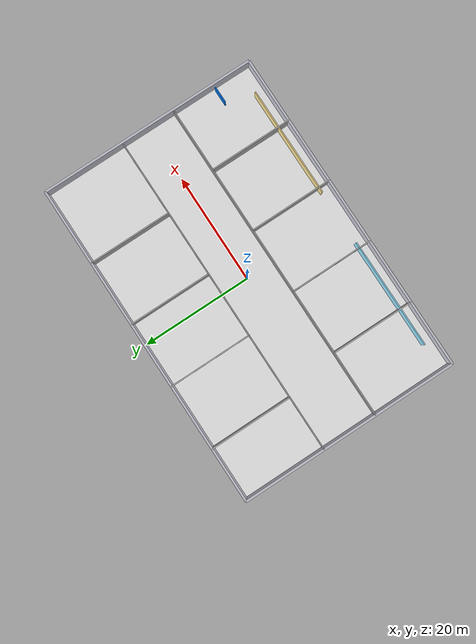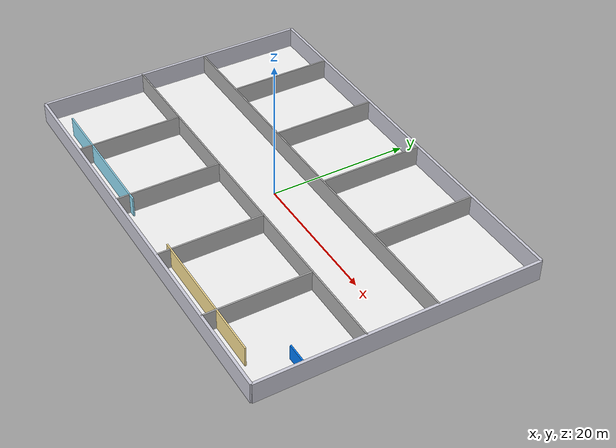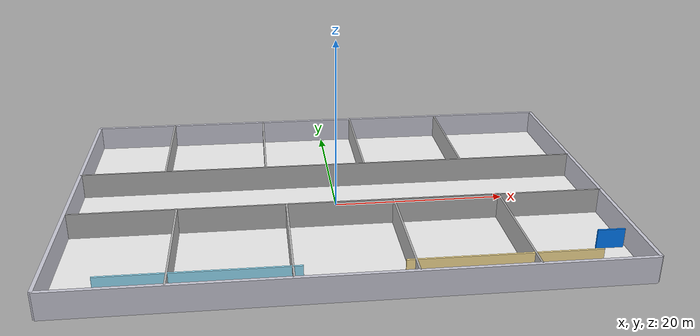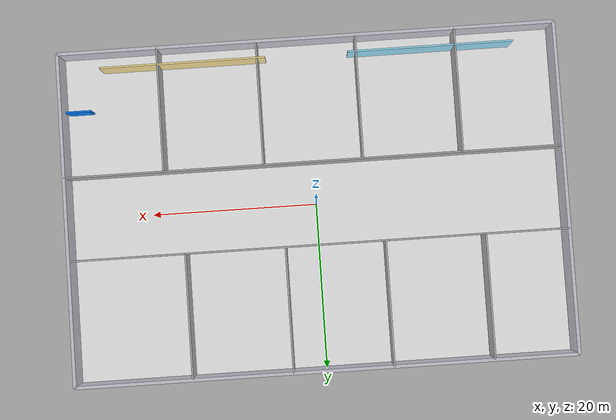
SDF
<sdf version="1.7">
 <world name="smart_hospital">
  <light name="sun_light" type="directional">
   <pose>0 0 20 0 0 0</pose>
   <diffuse>1 1 1 1</diffuse>
   <specular>0.2 0.2 0.2 1</specular>
   <direction>-0.5 0.1 -0.9</direction>
  </light>
  <model name="floor">
   <static>true</static>
   <link name="link">
    <collision name="collision"><geometry><box><size>60 40 0.1</size></box></geometry></collision>
    <visual name="visual">
     <geometry><box><size>60 40 0.1</size></box></geometry>
     <material><ambient>0.95 0.95 0.95 1</ambient><diffuse>0.95 0.95 0.95 1</diffuse></material>
    </visual>
   </link>
  </model>
  <model name="top_wall">
   <static>true</static>
   <pose>0 20 1.5 0 0 0</pose>
   <link name="link">
    <collision name="collision"><geometry><box><size>60 0.4 3</size></box></geometry></collision>
    <visual name="visual">
     <geometry><box><size>60 0.4 3</size></box></geometry>
     <material><ambient>0.8 0.8 0.85 1</ambient></material>
    </visual>
   </link>
  </model>
  <model name="bottom_wall">
   <static>true</static>
   <pose>0 -20 1.5 0 0 0</pose>
   <link name="link">
    <collision name="collision"><geometry><box><size>60 0.4 3</size></box></geometry></collision>
    <visual name="visual">
     <geometry><box><size>60 0.4 3</size></box></geometry>
     <material><ambient>0.8 0.8 0.85 1</ambient></material>
    </visual>
   </link>
  </model>
  <model name="left_wall">
   <static>true</static>
   <pose>-30 0 1.5 0 0 1.57</pose>
   <link name="link">
    <collision name="collision"><geometry><box><size>40 0.4 3</size></box></geometry></collision>
    <visual name="visual">
     <geometry><box><size>40 0.4 3</size></box></geometry>
     <material><ambient>0.8 0.8 0.85 1</ambient></material>
    </visual>
   </link>
  </model>
  <model name="right_wall">
   <static>true</static>
   <pose>30 0 1.5 0 0 1.57</pose>
   <link name="link">
    <collision name="collision"><geometry><box><size>40 0.4 3</size></box></geometry></collision>
    <visual name="visual">
     <geometry><box><size>40 0.4 3</size></box></geometry>
     <material><ambient>0.8 0.8 0.85 1</ambient></material>
    </visual>
   </link>
  </model>
  <model name="corridor_top">
   <static>true</static>
   <pose>0 5 1.5 0 0 0</pose>
   <link name="link">
    <collision name="collision"><geometry><box><size>60 0.2 3</size></box></geometry></collision>
    <visual name="visual">
     <geometry><box><size>60 0.2 3</size></box></geometry>
     <material><ambient>0.7 0.7 0.7 1</ambient></material>
    </visual>
   </link>
  </model>
  <model name="corridor_bottom">
   <static>true</static>
   <pose>0 -5 1.5 0 0 0</pose>
   <link name="link">
    <collision name="collision"><geometry><box><size>60 0.2 3</size></box></geometry></collision>
    <visual name="visual">
     <geometry><box><size>60 0.2 3</size></box></geometry>
     <material><ambient>0.7 0.7 0.7 1</ambient></material>
    </visual>
   </link>
  </model>
  <model name="icu1_divider">
   <static>true</static>
   <pose>-20 12.5 1.5 0 0 1.57</pose>
   <link name="link">
    <collision name="collision"><geometry><box><size>15 0.2 3</size></box></geometry></collision>
    <visual name="visual"><geometry><box><size>15 0.2 3</size></box></geometry></visual>
   </link>
  </model>
  <model name="icu2_divider">
   <static>true</static>
   <pose>-8 12.5 1.5 0 0 1.57</pose>
   <link name="link">
    <collision name="collision"><geometry><box><size>15 0.2 3</size></box></geometry></collision>
    <visual name="visual"><geometry><box><size>15 0.2 3</size></box></geometry></visual>
   </link>
  </model>
  <model name="patient_divider">
   <static>true</static>
   <pose>4 12.5 1.5 0 0 1.57</pose>
   <link name="link">
    <collision name="collision"><geometry><box><size>15 0.2 3</size></box></geometry></collision>
    <visual name="visual"><geometry><box><size>15 0.2 3</size></box></geometry></visual>
   </link>
  </model>
  <model name="medical_divider">
   <static>true</static>
   <pose>16 12.5 1.5 0 0 1.57</pose>
   <link name="link">
    <collision name="collision"><geometry><box><size>15 0.2 3</size></box></geometry></collision>
    <visual name="visual"><geometry><box><size>15 0.2 3</size></box></geometry></visual>
   </link>
  </model>
  <model name="reception_divider">
   <static>true</static>
   <pose>-18 -12.5 1.5 0 0 1.57</pose>
   <link name="link">
    <collision name="collision"><geometry><box><size>15 0.2 3</size></box></geometry></collision>
    <visual name="visual"><geometry><box><size>15 0.2 3</size></box></geometry></visual>
   </link>
  </model>
  <model name="waiting_divider">
   <static>true</static>
   <pose>-6 -12.5 1.5 0 0 1.57</pose>
   <link name="link">
    <collision name="collision"><geometry><box><size>15 0.2 3</size></box></geometry></collision>
    <visual name="visual"><geometry><box><size>15 0.2 3</size></box></geometry></visual>
   </link>
  </model>
  <model name="opd_divider">
   <static>true</static>
   <pose>6 -12.5 1.5 0 0 1.57</pose>
   <link name="link">
    <collision name="collision"><geometry><box><size>15 0.2 3</size></box></geometry></collision>
    <visual name="visual"><geometry><box><size>15 0.2 3</size></box></geometry></visual>
   </link>
  </model>
  <model name="pharmacy_divider">
   <static>true</static>
   <pose>18 -12.5 1.5 0 0 1.57</pose>
   <link name="link">
    <collision name="collision"><geometry><box><size>15 0.2 3</size></box></geometry></collision>
    <visual name="visual"><geometry><box><size>15 0.2 3</size></box></geometry></visual>
   </link>
  </model>
  <model name="bathroom_wall">
   <static>true</static>
   <pose>-15 -18 1.5 0 0 0</pose>
   <link name="link">
    <collision name="collision"><geometry><box><size>20 0.2 3</size></box></geometry></collision>
    <visual name="visual">
     <geometry><box><size>20 0.2 3</size></box></geometry>
     <material><ambient>0.6 0.9 1 1</ambient></material>
    </visual>
   </link>
  </model>
  <model name="canteen_wall">
   <static>true</static>
   <pose>15 -18 1.5 0 0 0</pose>
   <link name="link">
    <collision name="collision"><geometry><box><size>20 0.2 3</size></box></geometry></collision>
    <visual name="visual">
     <geometry><box><size>20 0.2 3</size></box></geometry>
     <material><ambient>1 0.9 0.6 1</ambient></material>
    </visual>
   </link>
  </model>
  <model name="entry_gate">
   <static>true</static>
   <pose>28 -13 1 0 0 0</pose>
   <link name="link">
    <visual name="visual">
     <geometry><box><size>3 0.2 2.5</size></box></geometry>
     <material><ambient>0 0.5 1 1</ambient></material>
    </visual>
   </link>
  </model>
 </world>
</sdf>
